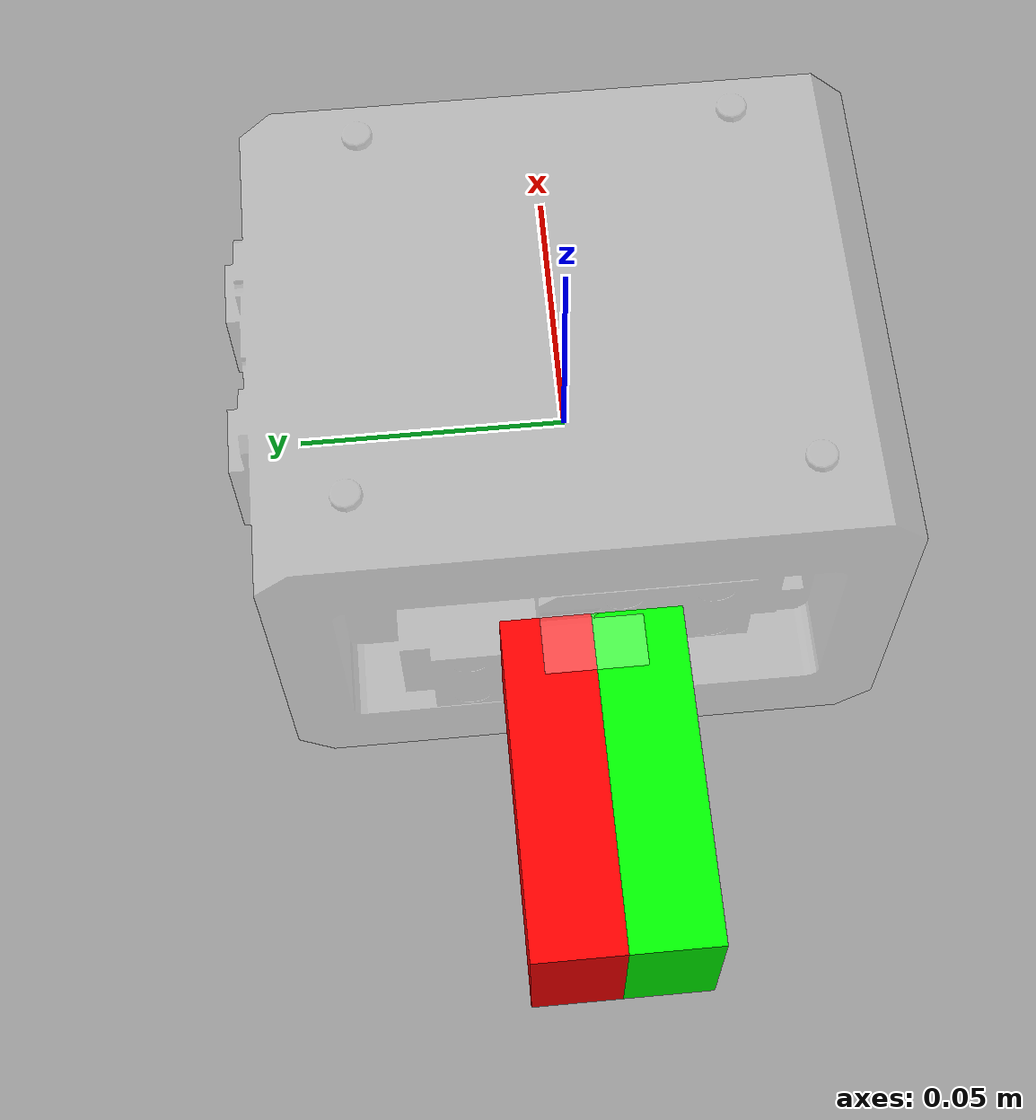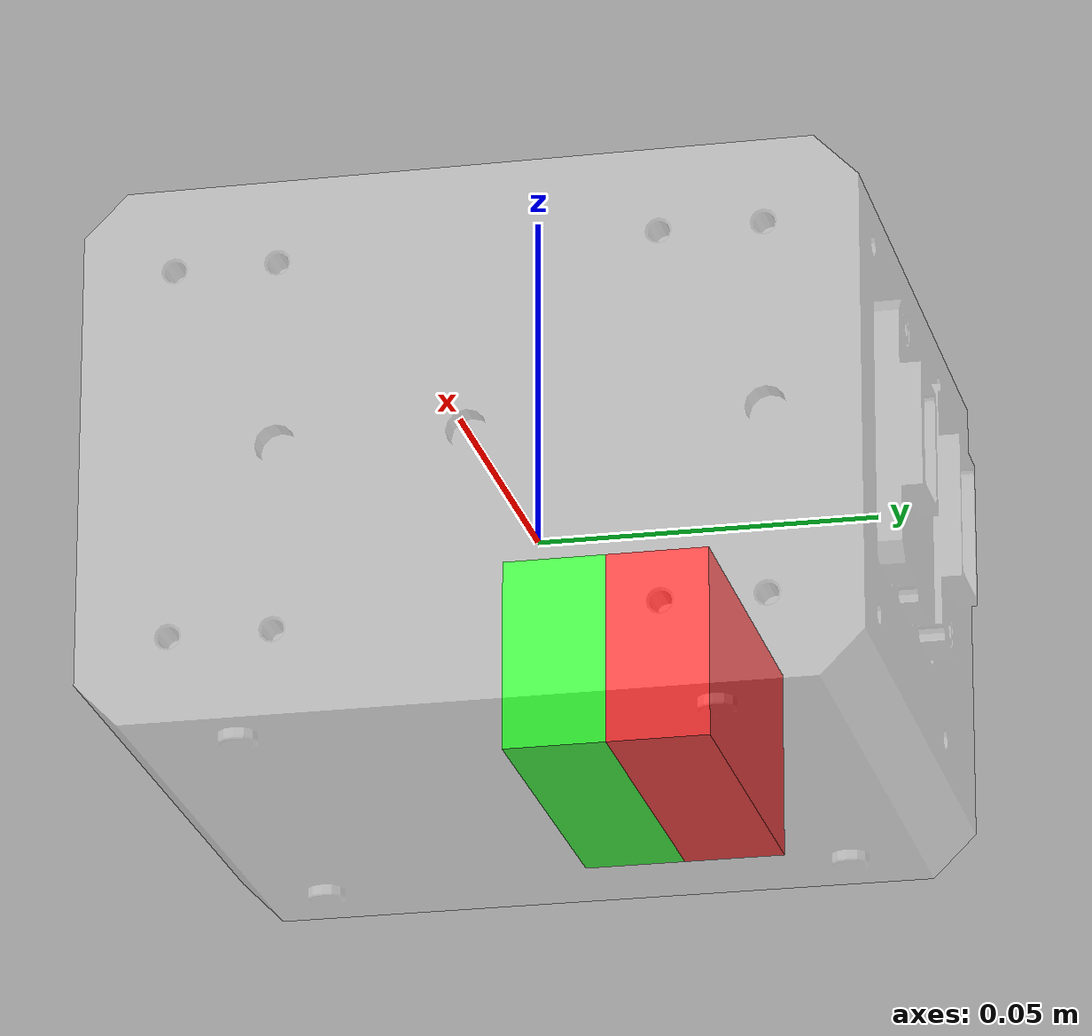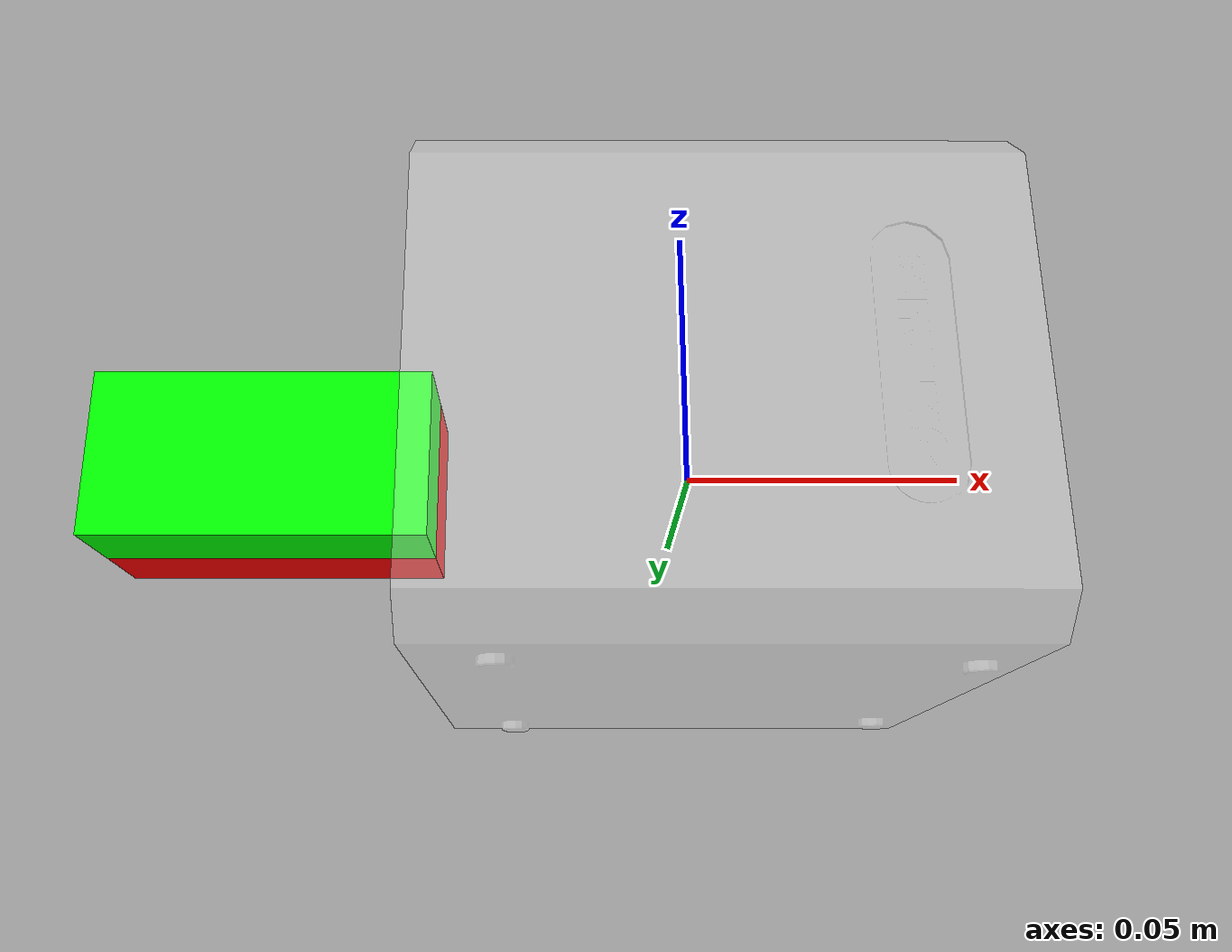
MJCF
<mujoco model="pg70">
  <compiler angle="radian" meshdir="meshes"/>

  <asset>
    <mesh name="pg70" file="pg70/pg70.stl" />
	<material name="pg70_mat" rgba="1 1 1 0.3"
	        specular="0.2" shininess="0.5"/>
  </asset>

  <worldbody>
    <light name="top" pos="0 0 2" mode="trackcom"/>
    <body name="pg70_palm_link">
      <inertial pos="0 0 0" mass="1" diaginertia="0.01 0.01 0.01" />
      <geom type="mesh" mesh="pg70" material="pg70_mat" pos="0.0465 0.0 0.0" euler="0.0 -1.57 0.0"/>
	  <body name="pg70_finger_left_link" pos="-0.0765 0.008 0.0">
        <inertial pos="0 0 0" mass="1" diaginertia="0.01 0.01 0.01" />
        <joint name="pg70_finger_left_joint" axis="0 1 0" type="slide" range="-0.001 0.0301" actuatorfrcrange="-10 10" />
        <geom size="0.03 0.008 0.015" type="box" rgba="1 0 0 1" />
      </body>
      <body name="pg70_finger_right_link" pos="-0.0765 -0.008 0.0">
        <inertial pos="0 0 0" mass="1" diaginertia="0.01 0.01 0.01" />
        <joint name="pg70_finger_right_joint" axis="0 -1 0" type="slide" range="-0.001 0.0301" actuatorfrcrange="-10 10" />
        <geom size="0.03 0.008 0.015" type="box" rgba="0 1 0 1" />
      </body>
    </body>
  </worldbody>

  <actuator>
    <position kp="100" ctrllimited="true" ctrlrange="-0.001 0.0301" joint="pg70_finger_left_joint"/>
    <position kp="100" ctrllimited="true" ctrlrange="-0.001 0.0301" joint="pg70_finger_right_joint"/>
  </actuator>
</mujoco>
